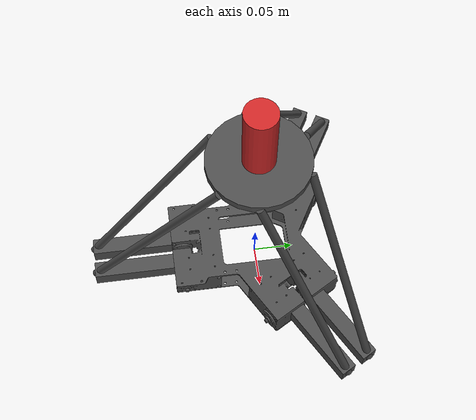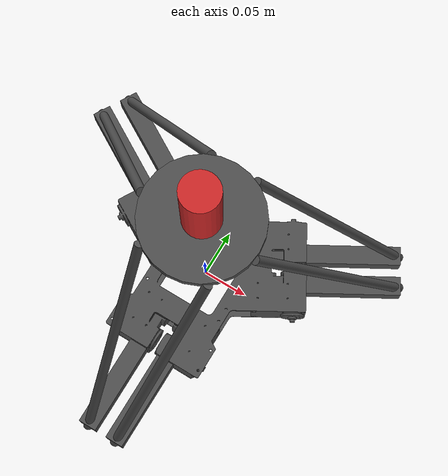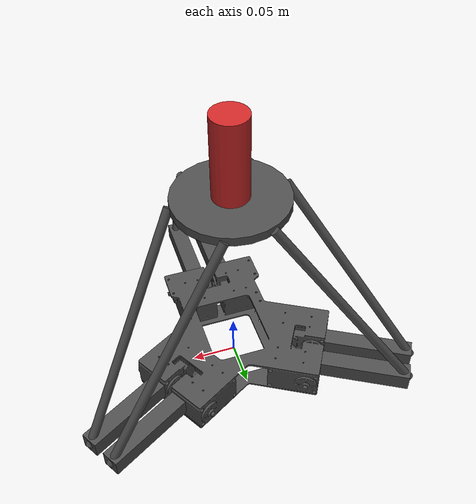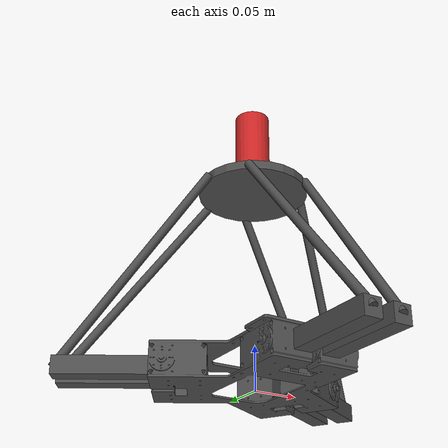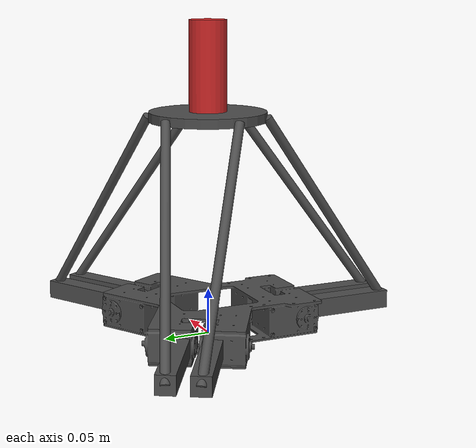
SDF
<?xml version="1.0" encoding="UTF-8"?>
<sdf version='1.9'>
<model name="stewart_platform">
<self_collide>true</self_collide>

  <joint name="proximal_link_1_joint" type="revolute">
		<parent>link</parent>
		<child>proximal_link_1</child>
		<pose>-0.06 0 0 0 0 0</pose>
		<axis>
			<xyz>0.5000001943375613 -0.8660252915835662 0</xyz>
      <limit>
				<lower> -0.785398 </lower>
				<upper> 1.57079 </upper>
        <effort>1e6</effort>
			</limit>
		</axis>
	</joint>

  <joint name="proximal_link_2_joint" type="revolute">
		<parent>link</parent>
		<child>proximal_link_2</child>
		<pose>-0.06 0 0 0 0 0</pose>
		<axis>
			<xyz>0.5000001943375613 -0.8660252915835662 0</xyz>
      <limit>
				<lower> -0.785398 </lower>
				<upper> 1.57079 </upper>
        <effort>1e6</effort>
			</limit>
		</axis>
	</joint>

	<joint name="proximal_link_3_joint" type="revolute">
		<parent>link</parent>
		<child>proximal_link_3</child>
		<pose>-0.06 0 0 0 0 0</pose>
		<axis>
			<xyz>0.5000001943375613 0.8660252915835662 0</xyz>
      <limit>
				<lower> -0.785398 </lower>
				<upper> 1.57079 </upper>
        <effort>1e6</effort>
			</limit>
		</axis>
	</joint>

  <joint name="proximal_link_4_joint" type="revolute">
		<parent>link</parent>
		<child>proximal_link_4</child>
		<pose>-0.06 0 0 0 0 0</pose>
		<axis>
			<xyz>0.5000001943375613 0.8660252915835662 0</xyz>
      <limit>
				<lower> -0.785398 </lower>
				<upper> 1.57079 </upper>
        <effort>1e6</effort>
			</limit>
		</axis>
	</joint>

	<joint name="proximal_link_5_joint" type="revolute">
		<parent>link</parent>
		<child>proximal_link_5</child>
		<pose>-0.06 0 0 0 0 0</pose>
		<axis>
			<xyz>-1 0 0</xyz>
      <limit>
				<lower> -0.785398 </lower>
				<upper> 1.57079 </upper>
        <effort>1e6</effort>
			</limit>
		</axis>
	</joint>

  <joint name="proximal_link_6_joint" type="revolute">
		<parent>link</parent>
		<child>proximal_link_6</child>
		<pose>-0.06 0 0 0 0 0</pose>
		<axis>
			<xyz>-1 0 0</xyz>
      <limit>
				<lower> -0.785398 </lower>
				<upper> 1.57079 </upper>
        <effort>1e6</effort>
			</limit>
		</axis>
	</joint>

  <joint name="distal_link_1_joint" type="ball">
		<parent>proximal_link_1</parent>
		<child>distal_link_1</child>
		<pose> 0.135345 0 0 0 0 1.5708</pose>
		<axis>
      <xyz>0 0 1</xyz>
		</axis>
    <axis2>
      <xyz>0 1 0</xyz>
		</axis2>
    <physics>
      <ode>
        <fudge_factor>1</fudge_factor>
      </ode>
    </physics>
	</joint>

  <joint name="distal_link_2_joint" type="ball">
		<parent>proximal_link_2</parent>
		<child>distal_link_2</child>
		<pose> 0.135345 0 0 0 0 1.5708</pose>
		<axis>
      <xyz>0 0 1</xyz>
		</axis>
    <axis2>
      <xyz>0 1 0</xyz>
		</axis2>
    <physics>
      <ode>
        <fudge_factor>1</fudge_factor>
      </ode>
    </physics>
	</joint>

  <joint name="distal_link_3_joint" type="ball">
		<parent>proximal_link_3</parent>
		<child>distal_link_3</child>
		<pose> 0.135345 0 0 0 0 0</pose>
		<axis>
      <xyz>0 0 1</xyz>
		</axis>
    <axis2>
      <xyz>0 1 0</xyz>
		</axis2>
        <physics>
      <ode>
        <fudge_factor>1</fudge_factor>
      </ode>
    </physics>
	</joint>

  <joint name="distal_link_4_joint" type="ball">
		<parent>proximal_link_4</parent>
		<child>distal_link_4</child>
		<pose> 0.135345 0 0 0 0 0</pose>
		<axis>
      <xyz>0 0 1</xyz>
		</axis>
    <axis2>
      <xyz>0 1 0</xyz>
		</axis2>
        <physics>
      <ode>
        <fudge_factor>1</fudge_factor>
      </ode>
    </physics>
	</joint>

  <joint name="distal_link_5_joint" type="ball">
		<parent>proximal_link_5</parent>
		<child>distal_link_5</child>
		<pose> 0.135345 0 0 0 0 0</pose>
		<axis>
      <xyz>0 0 1</xyz>
		</axis>
    <axis2>
      <xyz>0 1 0</xyz>
		</axis2>
        <physics>
      <ode>
        <fudge_factor>1</fudge_factor>
      </ode>
    </physics>
	</joint>

  <joint name="distal_link_6_joint" type="ball">
		<parent>proximal_link_6</parent>
		<child>distal_link_6</child>
		<pose> 0.135345 0 0 0 0 0</pose>
		<axis>
      <xyz>0 0 1</xyz>
		</axis>
    <axis2>
      <xyz>0 1 0</xyz>
		</axis2>
      <physics>
      <ode>
        <fudge_factor>1</fudge_factor>
      </ode>
    </physics>
	</joint>

  <joint name="platform_link_1_joint" type="ball">
		<parent>distal_link_1</parent>
		<child>platform_link_closing_1</child>
		<pose>0.06205127186683686 -0.007475938717505671 0 0 0 0</pose>
    <axis>
      <xyz>0 0 1</xyz>
		</axis>
    <axis2>
      <xyz>0 1 0</xyz>
		</axis2>
    <physics>
      <ode>
        <fudge_factor>1</fudge_factor>
      </ode>
    </physics>
	</joint>
  <plugin filename="libgz-sim-detachable-joint-system.so" name="gz::sim::systems::DetachableJoint">
      <parent_link>platform_link</parent_link>
      <child_model>stewart_platform</child_model>
      <child_link>platform_link_closing_1</child_link>
  </plugin>

  <joint name="platform_link_2_joint" type="ball">
		<parent>distal_link_2</parent>
		<child>platform_link_closing_2</child>
		<pose>0.02455125729151977 0.0574759581512618 0 0 0 0</pose>
        <axis>
      <xyz>0 0 1</xyz>
		</axis>
    <axis2>
      <xyz>0 1 0</xyz>
		</axis2>
    <physics>
      <ode>
        <fudge_factor>1</fudge_factor>
      </ode>
    </physics>
	</joint>
  <plugin filename="libgz-sim-detachable-joint-system.so" name="gz::sim::systems::DetachableJoint">
      <parent_link>platform_link</parent_link>
      <child_model>stewart_platform</child_model>
      <child_link>platform_link_closing_2</child_link>
  </plugin>

  <joint name="platform_link_3_joint" type="ball">
		<parent>distal_link_3</parent>
		<child>platform_link_closing_3</child>
		<pose>-0.02455125729151977 0.0574759581512618 0 0 0 0</pose>
        <axis>
      <xyz>0 0 1</xyz>
		</axis>
    <axis2>
      <xyz>0 1 0</xyz>
		</axis2>
        <physics>
      <ode>
        <fudge_factor>1</fudge_factor>
      </ode>
    </physics>
	</joint>
  <plugin filename="libgz-sim-detachable-joint-system.so" name="gz::sim::systems::DetachableJoint">
      <parent_link>platform_link_closing_3</parent_link>
      <child_model>stewart_platform</child_model>
      <child_link>platform_link</child_link>
  </plugin>

  <joint name="platform_link_4_joint" type="ball">
		<parent>distal_link_4</parent>
		<child>platform_link_closing_4</child>
		<pose>-0.06205127186683686 -0.007475938717505671 0 0 0 0</pose>
        <axis>
      <xyz>0 0 1</xyz>
		</axis>
    <axis2>
      <xyz>0 1 0</xyz>
		</axis2>
        <physics>
      <ode>
        <fudge_factor>1</fudge_factor>
      </ode>
    </physics>
	</joint>
  <plugin filename="libgz-sim-detachable-joint-system.so" name="gz::sim::systems::DetachableJoint">
      <parent_link>platform_link</parent_link>
      <child_model>stewart_platform</child_model>
      <child_link>platform_link_closing_4</child_link>
  </plugin>

  <joint name="platform_link_5_joint" type="ball">
		<parent>distal_link_5</parent>
		<child>platform_link_closing_5</child>
		<pose>-0.0375 -0.05 0 0 0 0</pose>
        <axis>
      <xyz>0 0 1</xyz>
		</axis>
    <axis2>
      <xyz>0 1 0</xyz>
		</axis2>
        <physics>
      <ode>
        <fudge_factor>1</fudge_factor>
      </ode>
    </physics>
	</joint>
  <plugin filename="libgz-sim-detachable-joint-system.so" name="gz::sim::systems::DetachableJoint">
      <parent_link>platform_link</parent_link>
      <child_model>stewart_platform</child_model>
      <child_link>platform_link_closing_5</child_link>
  </plugin>

  <joint name="platform_link_6_joint" type="ball">
		<parent>distal_link_6</parent>
		<child>platform_link_closing_6</child>
		<pose>0.0375 -0.05 0 0 0 0</pose>
        <axis>
      <xyz>0 0 1</xyz>
		</axis>
    <axis2>
      <xyz>0 1 0</xyz>
		</axis2>
        <physics>
      <ode>
        <fudge_factor>1</fudge_factor>
      </ode>
    </physics>
  </joint>
  <plugin filename="libgz-sim-detachable-joint-system.so" name="gz::sim::systems::DetachableJoint">
      <parent_link>platform_link</parent_link>
      <child_model>stewart_platform</child_model>
      <child_link>platform_link_closing_6</child_link>
  </plugin>

  <joint name="nozzle_joint" type="fixed">
		<parent>platform_link</parent>
		<child>nozzle</child>
		<pose>0 0 0 0 0 0</pose>
	</joint>

  <link name="nozzle">
    <pose>0 0 0.2873294183952094 0 0 0</pose>
    <inertial>
    <mass>0.05</mass>
    <inertia>
      <ixx>9.333330000000002e-05</ixx>
      <ixy>0.0</ixy>
      <ixz>0.0</ixz>
      <iyy>9.333330000000002e-05</iyy>
      <iyz>0.0</iyz>
      <izz>2.0e-05</izz>
    </inertia>
    </inertial>

    <visual name="visual">
    <pose>0 0 0 0 0 0</pose>
      <geometry>
        <cylinder>
          <radius>0.02</radius>
          <length>0.1</length>
        </cylinder>
      </geometry>
      <material>
      <script>
        <name>Gazebo/Red</name>
        <uri>file://media/materials/scripts/gazebo.material</uri>
      </script>
      <shader type='pixel'>
        <normal_map>__default__</normal_map>
      </shader>
      <ambient>0.175 0.175 0.175 1</ambient>
      <diffuse>0.175 0.175 0.175 1</diffuse>
      <specular>0.175 0.175 0.175 1</specular>
      <emissive>0 0 0 1</emissive>
    </material>
    </visual>
  </link>

  <link name="link">
    <pose>0 0 0.02 0 0 0</pose>
    <inertial>
    <mass>0.1</mass>
    <inertia>
      <ixx>0.00021583332799999998</ixx>
      <ixy>0.0</ixy>
      <ixz>0.0</ixz>
      <iyy>0.00021583332799999998</iyy>
      <iyz>0.0</iyz>
      <izz>0.000405</izz>
    </inertia>
    </inertial>
    <collision name="collision">
      <geometry>
        <cylinder>
          <radius>0.0915</radius>
          <length>0.04</length>
        </cylinder>
      </geometry>
    </collision>
    <visual name="visual">
    <pose>-0.124 0.105 -0.02 0 0 -1.5708</pose>
      <geometry>
        <mesh>
          <uri>model://stewart_platform/meshes/Stewart_base.dae</uri>
          <scale> 0.001 0.001 0.001 </scale>
        </mesh>
      </geometry>
      <material>
      <script>
        <name>Gazebo/DarkGrey</name>
        <uri>file://media/materials/scripts/gazebo.material</uri>
      </script>
      <shader type='pixel'>
        <normal_map>__default__</normal_map>
      </shader>
      <ambient>0.175 0.175 0.175 1</ambient>
      <diffuse>0.175 0.175 0.175 1</diffuse>
      <specular>0.175 0.175 0.175 1</specular>
      <emissive>0 0 0 1</emissive>
    </material>
    </visual>
  </link>

  <link name="proximal_link_1">
    <pose>0.13815379694410468 0.06071061183950534 0.02 0 0 0.523599</pose>
    <inertial>
      <mass>0.02</mass>
      <inertia>
        <ixx>1.33333328e-06</ixx>
        <ixy>0.0</ixy>
        <ixz>0.0</ixz>
        <iyy>2.4666665679999998e-05</iyy>
        <iyz>0.0</iyz>
        <izz>2.4666665679999998e-05</izz>
      </inertia>
    </inertial>
    <collision name="collision">
      <geometry>
        <box>
          <size>0.12 0.02 0.02</size>
        </box>
      </geometry>
    </collision>
    <visual name="visual">
      <geometry>
        <box>
          <size>0.12 0.02 0.02</size>
        </box>
      </geometry>
      <material>
      <script>
        <name>Gazebo/DarkGrey</name>
        <uri>file://media/materials/scripts/gazebo.material</uri>
      </script>
      <shader type='pixel'>
        <normal_map>__default__</normal_map>
      </shader>
      <ambient>0.175 0.175 0.175 1</ambient>
      <diffuse>0.175 0.175 0.175 1</diffuse>
      <specular>0.175 0.175 0.175 1</specular>
      <emissive>0 0 0 1</emissive>
    </material>
    </visual>
  </link>

  <link name="proximal_link_2">
    <pose>0.12165379053096516 0.08928944646176303 0.02 0 0 0.523599</pose>
    <inertial>
    <mass>0.02</mass>
    <inertia>
      <ixx>1.33333328e-06</ixx>
      <ixy>0.0</ixy>
      <ixz>0.0</ixz>
      <iyy>2.4666665679999998e-05</iyy>
      <iyz>0.0</iyz>
      <izz>2.4666665679999998e-05</izz>
    </inertia>
    </inertial>
    <collision name="collision">
      <geometry>
        <box>
          <size>0.12 0.02 0.02</size>
        </box>
      </geometry>
    </collision>
    <visual name = "visual">
      <geometry>
        <box>
          <size>0.12 0.02 0.02</size>
        </box>
      </geometry>
      <material>
      <script>
        <name>Gazebo/DarkGrey</name>
        <uri>file://media/materials/scripts/gazebo.material</uri>
      </script>
      <shader type='pixel'>
        <normal_map>__default__</normal_map>
      </shader>
      <ambient>0.175 0.175 0.175 1</ambient>
      <diffuse>0.175 0.175 0.175 1</diffuse>
      <specular>0.175 0.175 0.175 1</specular>
      <emissive>0 0 0 1</emissive>
    </material>
    </visual>
  </link>

  <link name="proximal_link_3">
    <pose>-0.12165379053096516 0.08928944646176303 0.02 0 0 2.61799</pose>
    <inertial>
    <mass>0.02</mass>
    <inertia>
      <ixx>1.33333328e-06</ixx>
      <ixy>0.0</ixy>
      <ixz>0.0</ixz>
      <iyy>2.4666665679999998e-05</iyy>
      <iyz>0.0</iyz>
      <izz>2.4666665679999998e-05</izz>
    </inertia>
    </inertial>
    <collision name="collision">
      <geometry>
        <box>
          <size>0.12 0.02 0.02</size>
        </box>
      </geometry>
    </collision>
    <visual name = "visual">
      <geometry>
        <box>
          <size>0.12 0.02 0.02</size>
        </box>
      </geometry>
      <material>
      <script>
        <name>Gazebo/DarkGrey</name>
        <uri>file://media/materials/scripts/gazebo.material</uri>
      </script>
      <shader type='pixel'>
        <normal_map>__default__</normal_map>
      </shader>
      <ambient>0.175 0.175 0.175 1</ambient>
      <diffuse>0.175 0.175 0.175 1</diffuse>
      <specular>0.175 0.175 0.175 1</specular>
      <emissive>0 0 0 1</emissive>
    </material>
    </visual>
  </link>

  <link name="proximal_link_4">
    <pose>-0.13815379694410468 0.06071061183950534 0.02 0 0 2.61799</pose>
    <inertial>
    <mass>0.02</mass>
    <inertia>
      <ixx>1.33333328e-06</ixx>
      <ixy>0.0</ixy>
      <ixz>0.0</ixz>
      <iyy>2.4666665679999998e-05</iyy>
      <iyz>0.0</iyz>
      <izz>2.4666665679999998e-05</izz>
    </inertia>
    </inertial>
    <collision name="collision">
      <geometry>
        <box>
          <size>0.12 0.02 0.02</size>
        </box>
      </geometry>
    </collision>
    <visual name = "visual">
      <geometry>
        <box>
          <size>0.12 0.02 0.02</size>
        </box>
      </geometry>
      <material>
      <script>
        <name>Gazebo/DarkGrey</name>
        <uri>file://media/materials/scripts/gazebo.material</uri>
      </script>
      <shader type='pixel'>
        <normal_map>__default__</normal_map>
      </shader>
      <ambient>0.175 0.175 0.175 1</ambient>
      <diffuse>0.175 0.175 0.175 1</diffuse>
      <specular>0.175 0.175 0.175 1</specular>
      <emissive>0 0 0 1</emissive>
    </material>
    </visual>
  </link>

  <link name="proximal_link_5">
    <pose>-0.0165 -0.15 0.02 0 0 4.71239</pose>
    <inertial>
    <mass>0.02</mass>
    <inertia>
      <ixx>1.33333328e-06</ixx>
      <ixy>0.0</ixy>
      <ixz>0.0</ixz>
      <iyy>2.4666665679999998e-05</iyy>
      <iyz>0.0</iyz>
      <izz>2.4666665679999998e-05</izz>
    </inertia>
    </inertial>
    <collision name="collision">
      <geometry>
        <box>
          <size>0.12 0.02 0.02</size>
        </box>
      </geometry>
    </collision>
    <visual name = "visual">
      <geometry>
        <box>
          <size>0.12 0.02 0.02</size>
        </box>
      </geometry>
      <material>
      <script>
        <name>Gazebo/DarkGrey</name>
        <uri>file://media/materials/scripts/gazebo.material</uri>
      </script>
      <shader type='pixel'>
        <normal_map>__default__</normal_map>
      </shader>
      <ambient>0.175 0.175 0.175 1</ambient>
      <diffuse>0.175 0.175 0.175 1</diffuse>
      <specular>0.175 0.175 0.175 1</specular>
      <emissive>0 0 0 1</emissive>
    </material>
    </visual>
  </link>

  <link name="proximal_link_6">
    <pose>0.0165 -0.15 0.02 0 0 4.71239</pose>
    <inertial>
    <mass>0.02</mass>
    <inertia>
      <ixx>1.33333328e-06</ixx>
      <ixy>0.0</ixy>
      <ixz>0.0</ixz>
      <iyy>2.4666665679999998e-05</iyy>
      <iyz>0.0</iyz>
      <izz>2.4666665679999998e-05</izz>
    </inertia>
    </inertial>
    <collision name="collision">
      <geometry>
        <box>
          <size>0.12 0.02 0.02</size>
        </box>
      </geometry>
    </collision>
    <visual name = "visual">
      <geometry>
        <box>
          <size>0.12 0.02 0.02</size>
        </box>
      </geometry>
      <material>
      <script>
        <name>Gazebo/DarkGrey</name>
        <uri>file://media/materials/scripts/gazebo.material</uri>
      </script>
      <shader type='pixel'>
        <normal_map>__default__</normal_map>
      </shader>
      <ambient>0.175 0.175 0.175 1</ambient>
      <diffuse>0.175 0.175 0.175 1</diffuse>
      <specular>0.175 0.175 0.175 1</specular>
      <emissive>0 0 0 1</emissive>
    </material>
    </visual>
  </link>

  <link name="distal_link_1">
    <pose>0.12608329315297775 0.041617342391126674 0.12866470919760473 -1.4744678787260812 0.9361796638175959 0.6541030331103883</pose>
    <inertial>
    <mass>0.05</mass>
    <inertia>
      <ixx>6.25e-07</ixx>
      <ixy>0.0</ixy>
      <ixz>0.0</ixz>
      <iyy>0.00030561686162820643</iyy>
      <iyz>0.0</iyz>
      <izz>0.00030561686162820643</izz>
    </inertia>
    </inertial>
    <collision name="collision">
      <geometry>
        <box>
          <size>0.27069 0.01 0.01</size>
        </box>
      </geometry>
    </collision>
    <visual name = "visual">
      <pose> 0 0 0 0 1.57075 0 </pose>
      <geometry>
        <cylinder>
          <radius>0.005</radius>
          <length>0.27069</length>
        </cylinder>
      </geometry>
      <material>
      <script>
        <name>Gazebo/DarkGrey</name>
        <uri>file://media/materials/scripts/gazebo.material</uri>
      </script>
      <shader type='pixel'>
        <normal_map>__default__</normal_map>
      </shader>
      <ambient>0.175 0.175 0.175 1</ambient>
      <diffuse>0.175 0.175 0.175 1</diffuse>
      <specular>0.175 0.175 0.175 1</specular>
      <emissive>0 0 0 1</emissive>
    </material>
    </visual>
  </link>

  <link name="distal_link_2">
    <pose>0.09908328265874945 0.08838270813663926 0.12866470919760473  -1.4744678787260812 0.9361796638175959 0.39309496688961176</pose>
    <inertial>
    <mass>0.05</mass>
    <inertia>
      <ixx>6.25e-07</ixx>
      <ixy>0.0</ixy>
      <ixz>0.0</ixz>
      <iyy>0.00030561686162820643</iyy>
      <iyz>0.0</iyz>
      <izz>0.00030561686162820643</izz>
    </inertia>
    </inertial>
    <collision name="collision">
      <geometry>
        <box>
          <size>0.27069 0.01 0.01</size>
        </box>
      </geometry>
    </collision>
    <visual name = "visual">
      <pose> 0 0 0 0 1.57075 0 </pose>
      <geometry>
        <cylinder>
          <radius>0.005</radius>
          <length>0.27069</length>
        </cylinder>
      </geometry>
      <material>
      <script>
        <name>Gazebo/DarkGrey</name>
        <uri>file://media/materials/scripts/gazebo.material</uri>
      </script>
      <shader type='pixel'>
        <normal_map>__default__</normal_map>
      </shader>
      <ambient>0.175 0.175 0.175 1</ambient>
      <diffuse>0.175 0.175 0.175 1</diffuse>
      <specular>0.175 0.175 0.175 1</specular>
      <emissive>0 0 0 1</emissive>
    </material>
    </visual>
  </link>

  <link name="distal_link_3">
    <pose>-0.09908328265874945 0.08838270813663926 0.12866470919760473  -1.4744678787260812 0.9361796638175959 2.748494033110388</pose>
    <inertial>
    <mass>0.05</mass>
    <inertia>
      <ixx>6.25e-07</ixx>
      <ixy>0.0</ixy>
      <ixz>0.0</ixz>
      <iyy>0.00030561686162820643</iyy>
      <iyz>0.0</iyz>
      <izz>0.00030561686162820643</izz>
    </inertia>
    </inertial>
    <collision name="collision">
      <geometry>
        <box>
          <size>0.27069 0.01 0.01</size>
        </box>
      </geometry>
    </collision>
    <visual name = "visual">
      <pose> 0 0 0 0 1.57075 0 </pose>
      <geometry>
        <cylinder>
          <radius>0.005</radius>
          <length>0.27069</length>
        </cylinder>
      </geometry>
      <material>
      <script>
        <name>Gazebo/DarkGrey</name>
        <uri>file://media/materials/scripts/gazebo.material</uri>
      </script>
      <shader type='pixel'>
        <normal_map>__default__</normal_map>
      </shader>
      <ambient>0.175 0.175 0.175 1</ambient>
      <diffuse>0.175 0.175 0.175 1</diffuse>
      <specular>0.175 0.175 0.175 1</specular>
      <emissive>0 0 0 1</emissive>
    </material>
    </visual>
  </link>

  <link name="distal_link_4">
    <pose>-0.12608329315297775 0.041617342391126674 0.12866470919760473  -1.4744678787260812 0.9361796638175959 2.4874859668896114</pose>
    <inertial>
    <mass>0.05</mass>
    <inertia>
      <ixx>6.25e-07</ixx>
      <ixy>0.0</ixy>
      <ixz>0.0</ixz>
      <iyy>0.00030561686162820643</iyy>
      <iyz>0.0</iyz>
      <izz>0.00030561686162820643</izz>
    </inertia>
    </inertial>
    <collision name="collision">
      <geometry>
        <box>
          <size>0.27069 0.01 0.01</size>
        </box>
      </geometry>
    </collision>
    <visual name = "visual">
      <pose> 0 0 0 0 1.57075 0 </pose>
      <geometry>
        <cylinder>
          <radius>0.005</radius>
          <length>0.27069</length>
        </cylinder>
      </geometry>
      <material>
      <script>
        <name>Gazebo/DarkGrey</name>
        <uri>file://media/materials/scripts/gazebo.material</uri>
      </script>
      <shader type='pixel'>
        <normal_map>__default__</normal_map>
      </shader>
      <ambient>0.175 0.175 0.175 1</ambient>
      <diffuse>0.175 0.175 0.175 1</diffuse>
      <specular>0.175 0.175 0.175 1</specular>
      <emissive>0 0 0 1</emissive>
    </material>
    </visual>
  </link>

  <link name="distal_link_5">
    <pose>-0.027 -0.13 0.12866470919760473  -1.4744678787260812 0.9361796638175959 4.8428940331103885</pose>
    <inertial>
    <mass>0.05</mass>
    <inertia>
      <ixx>6.25e-07</ixx>
      <ixy>0.0</ixy>
      <ixz>0.0</ixz>
      <iyy>0.00030561686162820643</iyy>
      <iyz>0.0</iyz>
      <izz>0.00030561686162820643</izz>
    </inertia>
    </inertial>
    <collision name="collision">
      <geometry>
        <box>
          <size>0.27069 0.01 0.01</size>
        </box>
      </geometry>
    </collision>
    <visual name = "visual">
      <pose> 0 0 0 0 1.57075 0 </pose>
      <geometry>
        <cylinder>
          <radius>0.005</radius>
          <length>0.27069</length>
        </cylinder>
      </geometry>
      <material>
      <script>
        <name>Gazebo/DarkGrey</name>
        <uri>file://media/materials/scripts/gazebo.material</uri>
      </script>
      <shader type='pixel'>
        <normal_map>__default__</normal_map>
      </shader>
      <ambient>0.175 0.175 0.175 1</ambient>
      <diffuse>0.175 0.175 0.175 1</diffuse>
      <specular>0.175 0.175 0.175 1</specular>
      <emissive>0 0 0 1</emissive>
    </material>
    </visual>
  </link>

  <link name="distal_link_6">
    <pose>0.027 -0.13 0.12866470919760473  -1.4744678787260812 0.9361796638175959 4.581885966889612</pose>
    <inertial>
    <mass>0.05</mass>
    <inertia>
      <ixx>6.25e-07</ixx>
      <ixy>0.0</ixy>
      <ixz>0.0</ixz>
      <iyy>0.00030561686162820643</iyy>
      <iyz>0.0</iyz>
      <izz>0.00030561686162820643</izz>
    </inertia>
    </inertial>
    <collision name="collision">
      <geometry>
        <box>
          <size>0.27069 0.01 0.01</size>
        </box>
      </geometry>
    </collision>
    <visual name = "visual">
      <pose> 0 0 0 0 1.57075 0 </pose>
      <geometry>
        <cylinder>
          <radius>0.005</radius>
          <length>0.27069</length>
        </cylinder>
      </geometry>
      <material>
      <script>
        <name>Gazebo/DarkGrey</name>
        <uri>file://media/materials/scripts/gazebo.material</uri>
      </script>
      <shader type='pixel'>
        <normal_map>__default__</normal_map>
      </shader>
      <ambient>0.175 0.175 0.175 1</ambient>
      <diffuse>0.175 0.175 0.175 1</diffuse>
      <specular>0.175 0.175 0.175 1</specular>
      <emissive>0 0 0 1</emissive>
    </material>
    </visual>
  </link>

  <link name="platform_link">
    <pose>0 0 0.23732941839520943 0 0 0</pose>
    <inertial>
    <mass>0.12</mass>
    <inertia>
      <ixx>7.599999960000001e-05</ixx>
      <ixy>0.0</ixy>
      <ixz>0.0</ixz>
      <iyy>7.599999960000001e-05</iyy>
      <iyz>0.0</iyz>
      <izz>0.00015000000000000001</izz>
    </inertia>
    </inertial>
    <collision name="collision">
      <geometry>
        <cylinder>
          <radius>0.0625</radius>
          <length>0.01</length>
        </cylinder>
      </geometry>
    </collision>
    <visual name = "visual">
      <geometry>
        <cylinder>
          <radius>0.0625</radius>
          <length>0.01</length>
        </cylinder>
      </geometry>
      <material>
      <script>
        <name>Gazebo/DarkGrey</name>
        <uri>file://media/materials/scripts/gazebo.material</uri>
      </script>
      <shader type='pixel'>
        <normal_map>__default__</normal_map>
      </shader>
      <ambient>0.175 0.175 0.175 1</ambient>
      <diffuse>0.175 0.175 0.175 1</diffuse>
      <specular>0.175 0.175 0.175 1</specular>
      <emissive>0 0 0 1</emissive>
    </material>
    </visual>
  </link>

<link name="platform_link_closing_1">
    <pose>0 0 0.23732941839520943 0 0 0</pose>
    <inertial>
    <mass>1e-16</mass>
    <inertia>
      <ixx>9.333330000000002e-05</ixx>
      <ixy>0.0</ixy>
      <ixz>0.0</ixz>
      <iyy>9.333330000000002e-05</iyy>
      <iyz>0.0</iyz>
      <izz>2.0e-05</izz>
    </inertia>
    </inertial>
</link>

<link name="platform_link_closing_2">
    <pose>0 0 0.23732941839520943 0 0 0</pose>
    <inertial>
    <mass>1e-16</mass>
    <inertia>
      <ixx>9.333330000000002e-05</ixx>
      <ixy>0.0</ixy>
      <ixz>0.0</ixz>
      <iyy>9.333330000000002e-05</iyy>
      <iyz>0.0</iyz>
      <izz>2.0e-05</izz>
    </inertia>
    </inertial>
</link>

<link name="platform_link_closing_3">
    <pose>0 0 0.23732941839520943 0 0 0</pose>
    <inertial>
    <mass>1e-16</mass>
    <inertia>
      <ixx>9.333330000000002e-05</ixx>
      <ixy>0.0</ixy>
      <ixz>0.0</ixz>
      <iyy>9.333330000000002e-05</iyy>
      <iyz>0.0</iyz>
      <izz>2.0e-05</izz>
    </inertia>
    </inertial>
</link>

<link name="platform_link_closing_4">
    <pose>0 0 0.23732941839520943 0 0 0</pose>
    <inertial>
    <mass>1e-16</mass>
    <inertia>
      <ixx>9.333330000000002e-05</ixx>
      <ixy>0.0</ixy>
      <ixz>0.0</ixz>
      <iyy>9.333330000000002e-05</iyy>
      <iyz>0.0</iyz>
      <izz>2.0e-05</izz>
    </inertia>
    </inertial>
</link>

<link name="platform_link_closing_5">
    <pose>0 0 0.23732941839520943 0 0 0</pose>
    <inertial>
    <mass>1e-16</mass>
    <inertia>
      <ixx>9.333330000000002e-05</ixx>
      <ixy>0.0</ixy>
      <ixz>0.0</ixz>
      <iyy>9.333330000000002e-05</iyy>
      <iyz>0.0</iyz>
      <izz>2.0e-05</izz>
    </inertia>
    </inertial>
</link>

<link name="platform_link_closing_6">
    <pose>0 0 0.23732941839520943 0 0 0</pose>
    <inertial>
    <mass>1e-16</mass>
    <inertia>
      <ixx>9.333330000000002e-05</ixx>
      <ixy>0.0</ixy>
      <ixz>0.0</ixz>
      <iyy>9.333330000000002e-05</iyy>
      <iyz>0.0</iyz>
      <izz>2.0e-05</izz>
    </inertia>
    </inertial>
</link>

<plugin filename="libignition-gazebo-joint-position-controller-system.so"
    name="ignition::gazebo::systems::JointPositionController">
    <joint_name>proximal_link_1_joint</joint_name>
    <use_velocity_commands>true</use_velocity_commands>
    <cmd_max>1</cmd_max>
    <cmd_min>-1</cmd_min>
    <topic>servo1/cmd</topic>
</plugin>

<plugin filename="libignition-gazebo-joint-position-controller-system.so"
    name="ignition::gazebo::systems::JointPositionController">
    <joint_name>proximal_link_2_joint</joint_name>
    <use_velocity_commands>true</use_velocity_commands>
    <cmd_max>1</cmd_max>
    <cmd_min>-1</cmd_min>
    <topic>servo2/cmd</topic>
</plugin>

<plugin filename="libignition-gazebo-joint-position-controller-system.so"
    name="ignition::gazebo::systems::JointPositionController">
    <joint_name>proximal_link_3_joint</joint_name>
    <use_velocity_commands>true</use_velocity_commands>
    <cmd_max>1</cmd_max>
    <cmd_min>-1</cmd_min>
    <topic>servo3/cmd</topic>
</plugin>

<plugin filename="libignition-gazebo-joint-position-controller-system.so"
    name="ignition::gazebo::systems::JointPositionController">
    <joint_name>proximal_link_4_joint</joint_name>
    <use_velocity_commands>true</use_velocity_commands>
    <cmd_max>1</cmd_max>
    <cmd_min>-1</cmd_min>
    <topic>servo4/cmd</topic>
</plugin>

<plugin filename="libignition-gazebo-joint-position-controller-system.so"
    name="ignition::gazebo::systems::JointPositionController">
    <joint_name>proximal_link_5_joint</joint_name>
    <use_velocity_commands>true</use_velocity_commands>
    <cmd_max>1</cmd_max>
    <cmd_min>-1</cmd_min>
    <topic>servo5/cmd</topic>
</plugin>

<plugin filename="libignition-gazebo-joint-position-controller-system.so"
    name="ignition::gazebo::systems::JointPositionController">
    <joint_name>proximal_link_6_joint</joint_name>
    <use_velocity_commands>true</use_velocity_commands>
    <cmd_max>1</cmd_max>
    <cmd_min>-1</cmd_min>
    <topic>servo6/cmd</topic>
</plugin>

<plugin filename="libignition-gazebo-joint-state-publisher-system.so"
    name="ignition::gazebo::systems::JointStatePublisher"/>

</model>
</sdf>
